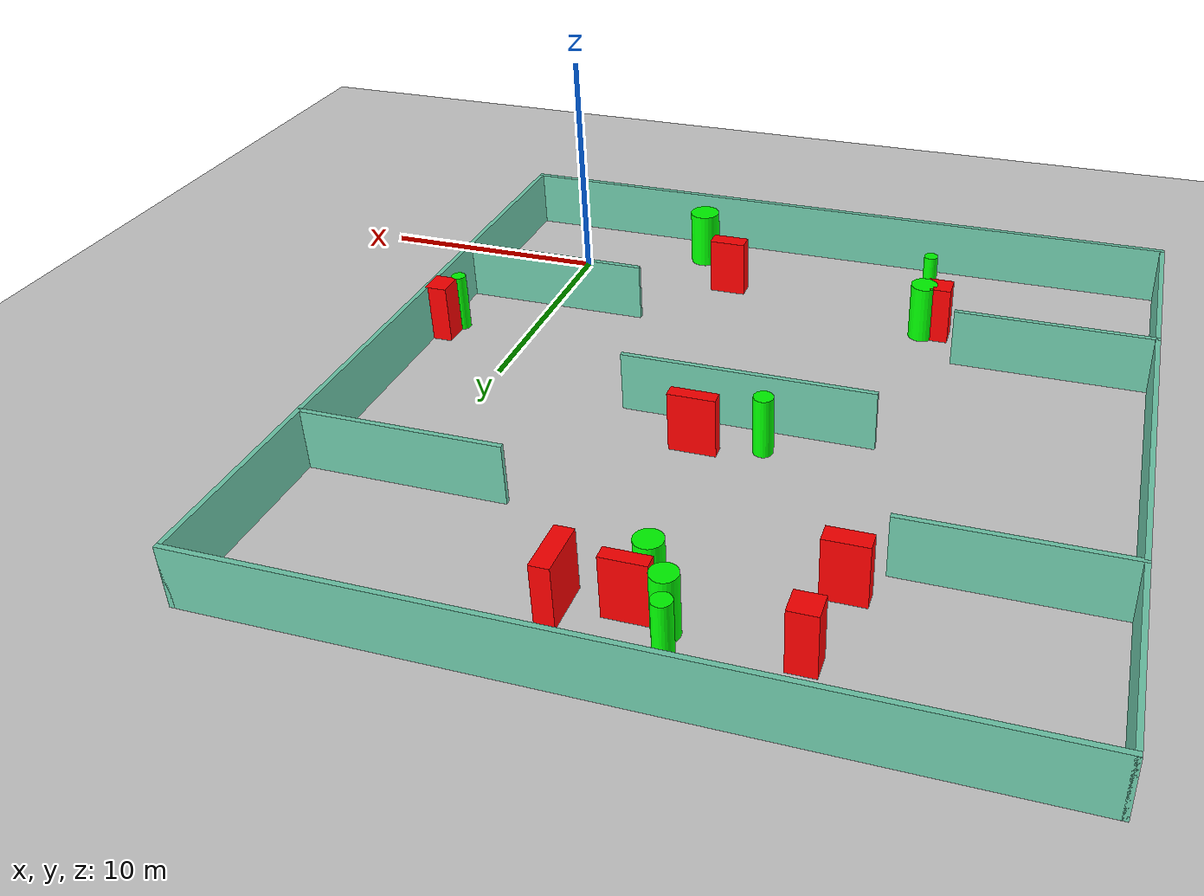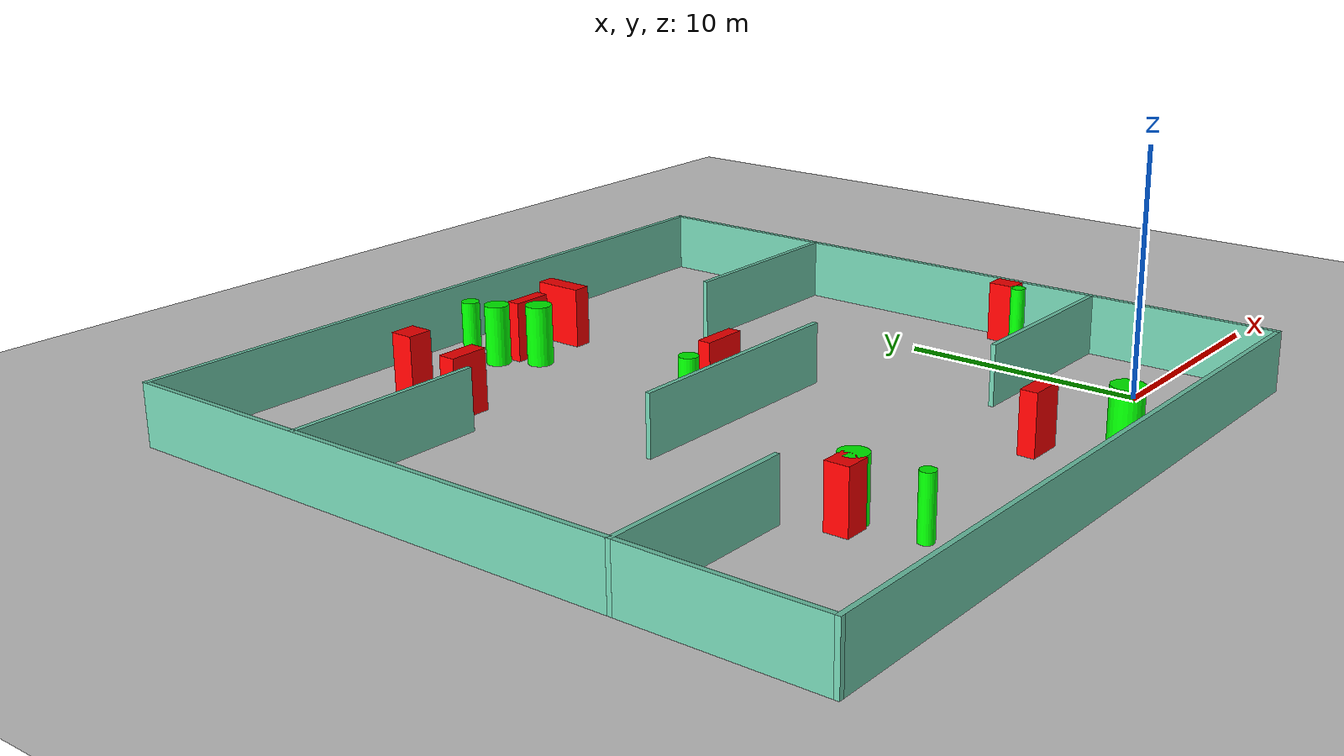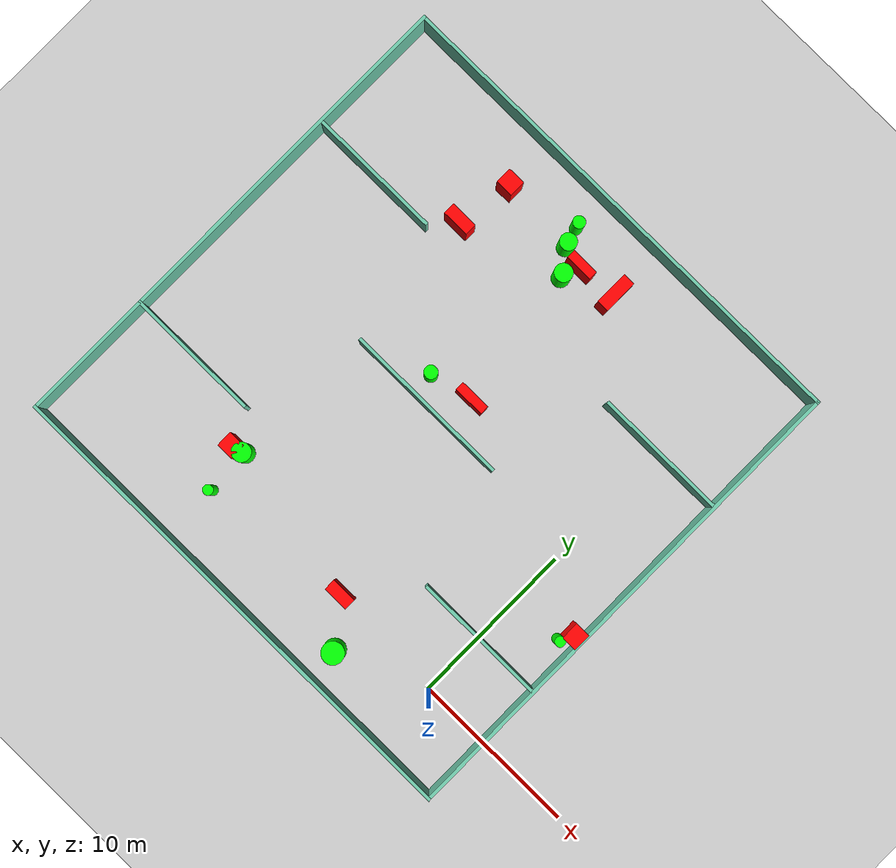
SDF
<sdf version="1.7">
 <world name="default">
  <light name="sun" type="directional">
   <pose>0 0 10 0 -0 0</pose>
   <diffuse>0.8 0.8 0.8 1</diffuse>
   <specular>0.2 0.2 0.2 1</specular>
   <attenuation>
    <range>1000</range>
    <constant>0.9</constant>
    <linear>0.01</linear>
    <quadratic>0.001</quadratic>
   </attenuation>
   <direction>-0.5 0.1 -0.9</direction>
   <spot><inner_angle>0</inner_angle><outer_angle>0</outer_angle><falloff>0</falloff></spot>
  </light>
  <model name="ground_plane">
   <static>1</static>
   <link name="link">
    <collision name="collision">
     <geometry><plane><normal>0 0 1</normal><size>100 100</size></plane></geometry>
     <surface>
      <contact><collide_bitmask>65535</collide_bitmask></contact>
      <friction><ode><mu>100</mu><mu2>50</mu2></ode></friction>
     </surface>
    </collision>
    <visual name="visual">
     <cast_shadows>0</cast_shadows>
     <geometry><plane><normal>0 0 1</normal><size>100 100</size></plane></geometry>
     <material>
      <script><uri>file://media/materials/scripts/gazebo.material</uri><name>Gazebo/Grey</name></script>
     </material>
    </visual>
   </link>
  </model>
  <gravity>0 0 -9.8</gravity>
  <magnetic_field>6e-06 2.3e-05 -4.2e-05</magnetic_field>
  <atmosphere type="adiabatic"/>
  <physics type="ode">
   <max_step_size>0.001</max_step_size>
   <real_time_factor>1</real_time_factor>
   <real_time_update_rate>1000</real_time_update_rate>
  </physics>
  <scene><ambient>0.4 0.4 0.4 1</ambient><background>0.7 0.7 0.7 1</background><shadows>1</shadows></scene>
  <spherical_coordinates>
   <surface_model>EARTH_WGS84</surface_model>
   <latitude_deg>0</latitude_deg>
   <longitude_deg>0</longitude_deg>
   <elevation>0</elevation>
   <heading_deg>0</heading_deg>
  </spherical_coordinates>
  <model name="my_base_walls">
   <link name="Wall_10">
    <collision name="Wall_10_Collision">
     <geometry><box><size>8.2 0.2 2.5</size></box></geometry>
     <pose>0 0 1.25 0 -0 0</pose>
    </collision>
    <visual name="Wall_10_Visual">
     <pose>0 0 1.25 0 -0 0</pose>
     <geometry><box><size>8.2 0.2 2.5</size></box></geometry>
     <material>
      <script><uri>file://media/materials/scripts/gazebo.material</uri><name>Gazebo/Grey</name></script>
      <ambient>0.435294 0.796078 0.67451 1</ambient>
     </material>
     <meta><layer>0</layer></meta>
    </visual>
    <pose>-11 -7 0 0 -0 0</pose>
   </link>
   <link name="Wall_12">
    <collision name="Wall_12_Collision">
     <geometry><box><size>8.2 0.2 2.5</size></box></geometry>
     <pose>0 0 1.25 0 -0 0</pose>
    </collision>
    <visual name="Wall_12_Visual">
     <pose>0 0 1.25 0 -0 0</pose>
     <geometry><box><size>8.2 0.2 2.5</size></box></geometry>
     <material>
      <script><uri>file://media/materials/scripts/gazebo.material</uri><name>Gazebo/Grey</name></script>
      <ambient>0.435294 0.796078 0.67451 1</ambient>
     </material>
     <meta><layer>0</layer></meta>
    </visual>
    <pose>-11 7 0 0 -0 0</pose>
   </link>
   <link name="Wall_14">
    <collision name="Wall_14_Collision">
     <geometry><box><size>8.2 0.2 2.5</size></box></geometry>
     <pose>0 0 1.25 0 -0 0</pose>
    </collision>
    <visual name="Wall_14_Visual">
     <pose>0 0 1.25 0 -0 0</pose>
     <geometry><box><size>8.2 0.2 2.5</size></box></geometry>
     <material>
      <script><uri>file://media/materials/scripts/gazebo.material</uri><name>Gazebo/Grey</name></script>
      <ambient>0.435294 0.796078 0.67451 1</ambient>
     </material>
     <meta><layer>0</layer></meta>
    </visual>
    <pose>11 7 0 0 -0 3.14159</pose>
   </link>
   <link name="Wall_16">
    <collision name="Wall_16_Collision">
     <geometry><box><size>10.2 0.2 2.5</size></box></geometry>
     <pose>0 0 1.25 0 -0 0</pose>
    </collision>
    <visual name="Wall_16_Visual">
     <pose>0 0 1.25 0 -0 0</pose>
     <geometry><box><size>10.2 0.2 2.5</size></box></geometry>
     <material>
      <script><uri>file://media/materials/scripts/gazebo.material</uri><name>Gazebo/Grey</name></script>
      <ambient>0.435294 0.796078 0.67451 1</ambient>
     </material>
     <meta><layer>0</layer></meta>
    </visual>
    <pose>0 0 0 0 -0 3.14159</pose>
   </link>
   <link name="Wall_2">
    <collision name="Wall_2_Collision">
     <geometry><box><size>30.2 0.2 2.5</size></box></geometry>
     <pose>0 0 1.25 0 -0 0</pose>
    </collision>
    <visual name="Wall_2_Visual">
     <pose>0 0 1.25 0 -0 0</pose>
     <geometry><box><size>30.2 0.2 2.5</size></box></geometry>
     <material>
      <script><uri>file://media/materials/scripts/gazebo.material</uri><name>Gazebo/Grey</name></script>
      <ambient>0.435294 0.796078 0.67451 1</ambient>
     </material>
     <meta><layer>0</layer></meta>
    </visual>
    <pose>0 -15 0 0 -0 3.14159</pose>
   </link>
   <link name="Wall_3">
    <collision name="Wall_3_Collision">
     <geometry><box><size>30.2 0.2 2.5</size></box></geometry>
     <pose>0 0 1.25 0 -0 0</pose>
    </collision>
    <visual name="Wall_3_Visual">
     <pose>0 0 1.25 0 -0 0</pose>
     <geometry><box><size>30.2 0.2 2.5</size></box></geometry>
     <material>
      <script><uri>file://media/materials/scripts/gazebo.material</uri><name>Gazebo/Grey</name></script>
      <ambient>0.435294 0.796078 0.67451 1</ambient>
     </material>
     <meta><layer>0</layer></meta>
    </visual>
    <pose>-15 0 0 0 -0 1.5708</pose>
   </link>
   <link name="Wall_4">
    <collision name="Wall_4_Collision">
     <geometry><box><size>30.2 0.2 2.5</size></box></geometry>
     <pose>0 0 1.25 0 -0 0</pose>
    </collision>
    <visual name="Wall_4_Visual">
     <pose>0 0 1.25 0 -0 0</pose>
     <geometry><box><size>30.2 0.2 2.5</size></box></geometry>
     <material>
      <script><uri>file://media/materials/scripts/gazebo.material</uri><name>Gazebo/Grey</name></script>
      <ambient>0.435294 0.796078 0.67451 1</ambient>
     </material>
     <meta><layer>0</layer></meta>
    </visual>
    <pose>0 15 0 0 -0 0</pose>
   </link>
   <link name="Wall_6">
    <collision name="Wall_6_Collision">
     <geometry><box><size>30.2 0.2 2.5</size></box></geometry>
     <pose>0 0 1.25 0 -0 0</pose>
    </collision>
    <visual name="Wall_6_Visual">
     <pose>0 0 1.25 0 -0 0</pose>
     <geometry><box><size>30.2 0.2 2.5</size></box></geometry>
     <material>
      <script><uri>file://media/materials/scripts/gazebo.material</uri><name>Gazebo/Grey</name></script>
      <ambient>0.435294 0.796078 0.67451 1</ambient>
     </material>
     <meta><layer>0</layer></meta>
    </visual>
    <pose>15 0 0 0 -0 1.5708</pose>
   </link>
   <link name="Wall_8">
    <collision name="Wall_8_Collision">
     <geometry><box><size>8.2 0.2 2.5</size></box></geometry>
     <pose>0 0 1.25 0 -0 0</pose>
    </collision>
    <visual name="Wall_8_Visual">
     <pose>0 0 1.25 0 -0 0</pose>
     <geometry><box><size>8.2 0.2 2.5</size></box></geometry>
     <material>
      <script><uri>file://media/materials/scripts/gazebo.material</uri><name>Gazebo/Grey</name></script>
      <ambient>0.435294 0.796078 0.67451 1</ambient>
     </material>
     <meta><layer>0</layer></meta>
    </visual>
    <pose>11 -7 0 0 -0 3.14159</pose>
   </link>
   <static>1</static>
   <pose>-11 11 0 0 -0 0</pose>
  </model>
  <model name="cylinder1">
   <static>1</static>
   <link name="link">
    <inertial>
     <mass>1</mass>
     <inertia><ixx>0.5</ixx><ixy>0</ixy><ixz>0</ixz><iyy>0.5</iyy><iyz>0</iyz><izz>1</izz></inertia>
    </inertial>
    <collision name="collision">
     <geometry><cylinder><radius>0.5051247047895173</radius><length>2.5</length></cylinder></geometry>
    </collision>
    <visual name="visual">
     <geometry><cylinder><radius>0.5051247047895173</radius><length>2.5</length></cylinder></geometry>
     <material>
      <ambient>0 1 0 1</ambient>
      <diffuse>0 1 0 1</diffuse>
      <specular>0.1 0.1 0.1 1</specular>
      <emissive>0 0 0 0</emissive>
     </material>
    </visual>
   </link>
   <pose>-11.750102653219269 22.742088392116216 1.25 0 0 0</pose>
  </model>
  <model name="cylinder2">
   <static>1</static>
   <link name="link">
    <inertial>
     <mass>1</mass>
     <inertia><ixx>0.5</ixx><ixy>0</ixy><ixz>0</ixz><iyy>0.5</iyy><iyz>0</iyz><izz>1</izz></inertia>
    </inertial>
    <collision name="collision">
     <geometry><cylinder><radius>0.657085115856653</radius><length>2.5</length></cylinder></geometry>
    </collision>
    <visual name="visual">
     <geometry><cylinder><radius>0.657085115856653</radius><length>2.5</length></cylinder></geometry>
     <material>
      <ambient>0 1 0 1</ambient>
      <diffuse>0 1 0 1</diffuse>
      <specular>0.1 0.1 0.1 1</specular>
      <emissive>0 0 0 0</emissive>
     </material>
    </visual>
   </link>
   <pose>-5.168487104473577 -2.094585643754862 1.25 0 0 0</pose>
  </model>
  <model name="cylinder3">
   <static>1</static>
   <link name="link">
    <inertial>
     <mass>1</mass>
     <inertia><ixx>0.5</ixx><ixy>0</ixy><ixz>0</ixz><iyy>0.5</iyy><iyz>0</iyz><izz>1</izz></inertia>
    </inertial>
    <collision name="collision">
     <geometry><cylinder><radius>0.5362083888742302</radius><length>2.5</length></cylinder></geometry>
    </collision>
    <visual name="visual">
     <geometry><cylinder><radius>0.5362083888742302</radius><length>2.5</length></cylinder></geometry>
     <material>
      <ambient>0 1 0 1</ambient>
      <diffuse>0 1 0 1</diffuse>
      <specular>0.1 0.1 0.1 1</specular>
      <emissive>0 0 0 0</emissive>
     </material>
    </visual>
   </link>
   <pose>-10.749053481302145 21.34895004351398 1.25 0 0 0</pose>
  </model>
  <model name="cylinder4">
   <static>1</static>
   <link name="link">
    <inertial>
     <mass>1</mass>
     <inertia><ixx>0.5</ixx><ixy>0</ixy><ixz>0</ixz><iyy>0.5</iyy><iyz>0</iyz><izz>1</izz></inertia>
    </inertial>
    <collision name="collision">
     <geometry><cylinder><radius>0.3065771500640928</radius><length>2.5</length></cylinder></geometry>
    </collision>
    <visual name="visual">
     <geometry><cylinder><radius>0.3065771500640928</radius><length>2.5</length></cylinder></geometry>
     <material>
      <ambient>0 1 0 1</ambient>
      <diffuse>0 1 0 1</diffuse>
      <specular>0.1 0.1 0.1 1</specular>
      <emissive>0 0 0 0</emissive>
     </material>
    </visual>
   </link>
   <pose>3.120738787994025 6.954036832106848 1.25 0 0 0</pose>
  </model>
  <model name="cylinder5">
   <static>1</static>
   <link name="link">
    <inertial>
     <mass>1</mass>
     <inertia><ixx>0.5</ixx><ixy>0</ixy><ixz>0</ixz><iyy>0.5</iyy><iyz>0</iyz><izz>1</izz></inertia>
    </inertial>
    <collision name="collision">
     <geometry><cylinder><radius>0.3674389625573865</radius><length>2.5</length></cylinder></geometry>
    </collision>
    <visual name="visual">
     <geometry><cylinder><radius>0.3674389625573865</radius><length>2.5</length></cylinder></geometry>
     <material>
      <ambient>0 1 0 1</ambient>
      <diffuse>0 1 0 1</diffuse>
      <specular>0.1 0.1 0.1 1</specular>
      <emissive>0 0 0 0</emissive>
     </material>
    </visual>
   </link>
   <pose>-12.082793380450267 23.910917415760853 1.25 0 0 0</pose>
  </model>
  <model name="cylinder6">
   <static>1</static>
   <link name="link">
    <inertial>
     <mass>1</mass>
     <inertia><ixx>0.5</ixx><ixy>0</ixy><ixz>0</ixz><iyy>0.5</iyy><iyz>0</iyz><izz>1</izz></inertia>
    </inertial>
    <collision name="collision">
     <geometry><cylinder><radius>0.3021001400462975</radius><length>2.5</length></cylinder></geometry>
    </collision>
    <visual name="visual">
     <geometry><cylinder><radius>0.3021001400462975</radius><length>2.5</length></cylinder></geometry>
     <material>
      <ambient>0 1 0 1</ambient>
      <diffuse>0 1 0 1</diffuse>
      <specular>0.1 0.1 0.1 1</specular>
      <emissive>0 0 0 0</emissive>
     </material>
    </visual>
   </link>
   <pose>-16.168119465298556 -0.5984893552912096 1.25 0 0 0</pose>
  </model>
  <model name="cylinder7">
   <static>1</static>
   <link name="link">
    <inertial>
     <mass>1</mass>
     <inertia><ixx>0.5</ixx><ixy>0</ixy><ixz>0</ixz><iyy>0.5</iyy><iyz>0</iyz><izz>1</izz></inertia>
    </inertial>
    <collision name="collision">
     <geometry><cylinder><radius>0.5626803904506683</radius><length>2.5</length></cylinder></geometry>
    </collision>
    <visual name="visual">
     <geometry><cylinder><radius>0.5626803904506683</radius><length>2.5</length></cylinder></geometry>
     <material>
      <ambient>0 1 0 1</ambient>
      <diffuse>0 1 0 1</diffuse>
      <specular>0.1 0.1 0.1 1</specular>
      <emissive>0 0 0 0</emissive>
     </material>
    </visual>
   </link>
   <pose>-16.32967725355957 2.1145533935597802 1.25 0 0 0</pose>
  </model>
  <model name="cylinder8">
   <static>1</static>
   <link name="link">
    <inertial>
     <mass>1</mass>
     <inertia><ixx>0.5</ixx><ixy>0</ixy><ixz>0</ixz><iyy>0.5</iyy><iyz>0</iyz><izz>1</izz></inertia>
    </inertial>
    <collision name="collision">
     <geometry><cylinder><radius>0.3981199614326094</radius><length>2.5</length></cylinder></geometry>
    </collision>
    <visual name="visual">
     <geometry><cylinder><radius>0.3981199614326094</radius><length>2.5</length></cylinder></geometry>
     <material>
      <ambient>0 1 0 1</ambient>
      <diffuse>0 1 0 1</diffuse>
      <specular>0.1 0.1 0.1 1</specular>
      <emissive>0 0 0 0</emissive>
     </material>
    </visual>
   </link>
   <pose>-12.066921492585958 12.419649374486944 1.25 0 0 0</pose>
  </model>
  <model name="box1">
   <static>1</static>
   <link name="link">
    <inertial>
     <mass>1</mass>
     <inertia><ixx>0.083</ixx><ixy>0</ixy><ixz>0</ixz><iyy>0.083</iyy><iyz>0</iyz><izz>0.083</izz></inertia>
    </inertial>
    <collision name="collision">
     <geometry><box><size>1.6682984825790086 0.7206324694148882 2.5</size></box></geometry>
    </collision>
    <visual name="visual">
     <geometry><box><size>1.6682984825790086 0.7206324694148882 2.5</size></box></geometry>
     <material>
      <ambient>1 0 0 1</ambient>
      <diffuse>1 0 0 1</diffuse>
      <specular>0.1 0.1 0.1 1</specular>
      <emissive>0 0 0 0</emissive>
     </material>
    </visual>
    <sensor name="my_contact" type="contact">
     <contact><collision>box_collision</collision><topic>__default_topic__</topic></contact>
    </sensor>
   </link>
   <pose>-16.823943442242815 19.47544332775527 1.25 0 0 0</pose>
  </model>
  <model name="box2">
   <static>1</static>
   <link name="link">
    <inertial>
     <mass>1</mass>
     <inertia><ixx>0.083</ixx><ixy>0</ixy><ixz>0</ixz><iyy>0.083</iyy><iyz>0</iyz><izz>0.083</izz></inertia>
    </inertial>
    <collision name="collision">
     <geometry><box><size>1.709004106307631 0.5306650417242833 2.5</size></box></geometry>
    </collision>
    <visual name="visual">
     <geometry><box><size>1.709004106307631 0.5306650417242833 2.5</size></box></geometry>
     <material>
      <ambient>1 0 0 1</ambient>
      <diffuse>1 0 0 1</diffuse>
      <specular>0.1 0.1 0.1 1</specular>
      <emissive>0 0 0 0</emissive>
     </material>
    </visual>
    <sensor name="my_contact" type="contact">
     <contact><collision>box_collision</collision><topic>__default_topic__</topic></contact>
    </sensor>
   </link>
   <pose>-10.338199517748077 22.36554187199271 1.25 0 0 0</pose>
  </model>
  <model name="box3">
   <static>1</static>
   <link name="link">
    <inertial>
     <mass>1</mass>
     <inertia><ixx>0.083</ixx><ixy>0</ixy><ixz>0</ixz><iyy>0.083</iyy><iyz>0</iyz><izz>0.083</izz></inertia>
    </inertial>
    <collision name="collision">
     <geometry><box><size>0.7393964279578713 2.071662529384101 2.5</size></box></geometry>
    </collision>
    <visual name="visual">
     <geometry><box><size>0.7393964279578713 2.071662529384101 2.5</size></box></geometry>
     <material>
      <ambient>1 0 0 1</ambient>
      <diffuse>1 0 0 1</diffuse>
      <specular>0.1 0.1 0.1 1</specular>
      <emissive>0 0 0 0</emissive>
     </material>
    </visual>
    <sensor name="my_contact" type="contact">
     <contact><collision>box_collision</collision><topic>__default_topic__</topic></contact>
    </sensor>
   </link>
   <pose>-7.95627992969982 22.564745072216805 1.25 0 0 0</pose>
  </model>
  <model name="box4">
   <static>1</static>
   <link name="link">
    <inertial>
     <mass>1</mass>
     <inertia><ixx>0.083</ixx><ixy>0</ixy><ixz>0</ixz><iyy>0.083</iyy><iyz>0</iyz><izz>0.083</izz></inertia>
    </inertial>
    <collision name="collision">
     <geometry><box><size>1.039681743620323 0.9780084094872264 2.5</size></box></geometry>
    </collision>
    <visual name="visual">
     <geometry><box><size>1.039681743620323 0.9780084094872264 2.5</size></box></geometry>
     <material>
      <ambient>1 0 0 1</ambient>
      <diffuse>1 0 0 1</diffuse>
      <specular>0.1 0.1 0.1 1</specular>
      <emissive>0 0 0 0</emissive>
     </material>
    </visual>
    <sensor name="my_contact" type="contact">
     <contact><collision>box_collision</collision><topic>__default_topic__</topic></contact>
    </sensor>
   </link>
   <pose>-16.98448632733629 1.973174033983602 1.25 0 0 0</pose>
  </model>
  <model name="box5">
   <static>1</static>
   <link name="link">
    <inertial>
     <mass>1</mass>
     <inertia><ixx>0.083</ixx><ixy>0</ixy><ixz>0</ixz><iyy>0.083</iyy><iyz>0</iyz><izz>0.083</izz></inertia>
    </inertial>
    <collision name="collision">
     <geometry><box><size>0.9323039586762512 1.1040391361047266 2.5</size></box></geometry>
    </collision>
    <visual name="visual">
     <geometry><box><size>0.9323039586762512 1.1040391361047266 2.5</size></box></geometry>
     <material>
      <ambient>1 0 0 1</ambient>
      <diffuse>1 0 0 1</diffuse>
      <specular>0.1 0.1 0.1 1</specular>
      <emissive>0 0 0 0</emissive>
     </material>
    </visual>
    <sensor name="my_contact" type="contact">
     <contact><collision>box_collision</collision><topic>__default_topic__</topic></contact>
    </sensor>
   </link>
   <pose>3.5379588039587766 7.7366540882564365 1.25 0 0 0</pose>
  </model>
  <model name="box6">
   <static>1</static>
   <link name="link">
    <inertial>
     <mass>1</mass>
     <inertia><ixx>0.083</ixx><ixy>0</ixy><ixz>0</ixz><iyy>0.083</iyy><iyz>0</iyz><izz>0.083</izz></inertia>
    </inertial>
    <collision name="collision">
     <geometry><box><size>1.0696500838243597 0.9926803035845134 2.5</size></box></geometry>
    </collision>
    <visual name="visual">
     <geometry><box><size>1.0696500838243597 0.9926803035845134 2.5</size></box></geometry>
     <material>
      <ambient>1 0 0 1</ambient>
      <diffuse>1 0 0 1</diffuse>
      <specular>0.1 0.1 0.1 1</specular>
      <emissive>0 0 0 0</emissive>
     </material>
    </visual>
    <sensor name="my_contact" type="contact">
     <contact><collision>box_collision</collision><topic>__default_topic__</topic></contact>
    </sensor>
   </link>
   <pose>-16.288716090207828 22.84473308641599 1.25 0 0 0</pose>
  </model>
  <model name="box7">
   <static>1</static>
   <link name="link">
    <inertial>
     <mass>1</mass>
     <inertia><ixx>0.083</ixx><ixy>0</ixy><ixz>0</ixz><iyy>0.083</iyy><iyz>0</iyz><izz>0.083</izz></inertia>
    </inertial>
    <collision name="collision">
     <geometry><box><size>1.5586798171004215 0.7045276125902016 2.5</size></box></geometry>
    </collision>
    <visual name="visual">
     <geometry><box><size>1.5586798171004215 0.7045276125902016 2.5</size></box></geometry>
     <material>
      <ambient>1 0 0 1</ambient>
      <diffuse>1 0 0 1</diffuse>
      <specular>0.1 0.1 0.1 1</specular>
      <emissive>0 0 0 0</emissive>
     </material>
    </visual>
    <sensor name="my_contact" type="contact">
     <contact><collision>box_collision</collision><topic>__default_topic__</topic></contact>
    </sensor>
   </link>
   <pose>-7.11366387621276 0.39682833622059155 1.25 0 0 0</pose>
  </model>
  <model name="box8">
   <static>1</static>
   <link name="link">
    <inertial>
     <mass>1</mass>
     <inertia><ixx>0.083</ixx><ixy>0</ixy><ixz>0</ixz><iyy>0.083</iyy><iyz>0</iyz><izz>0.083</izz></inertia>
    </inertial>
    <collision name="collision">
     <geometry><box><size>1.897736369451058 0.5426357193163946 2.5</size></box></geometry>
    </collision>
    <visual name="visual">
     <geometry><box><size>1.897736369451058 0.5426357193163946 2.5</size></box></geometry>
     <material>
      <ambient>1 0 0 1</ambient>
      <diffuse>1 0 0 1</diffuse>
      <specular>0.1 0.1 0.1 1</specular>
      <emissive>0 0 0 0</emissive>
     </material>
    </visual>
    <sensor name="my_contact" type="contact">
     <contact><collision>box_collision</collision><topic>__default_topic__</topic></contact>
    </sensor>
   </link>
   <pose>-9.49486499238073 12.982004800014865 1.25 0 0 0</pose>
  </model>
 </world>
</sdf>
